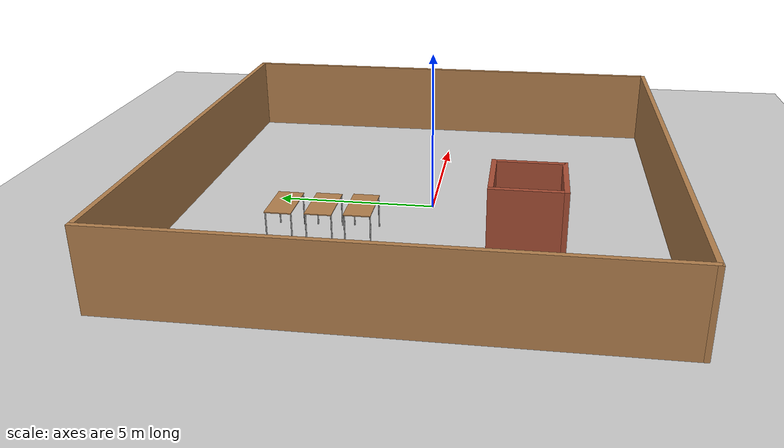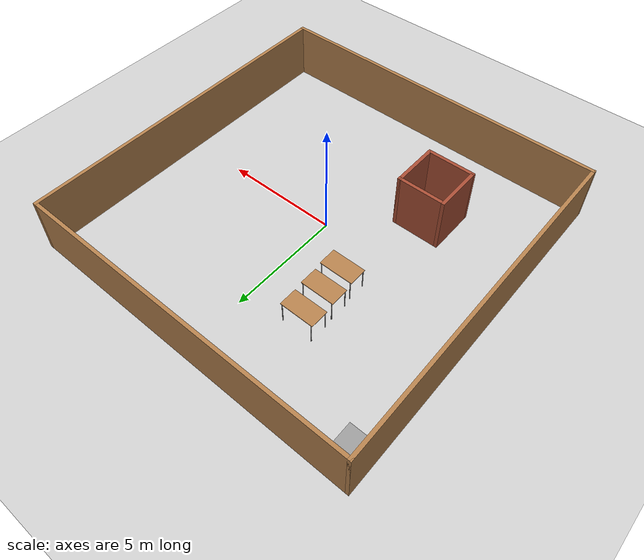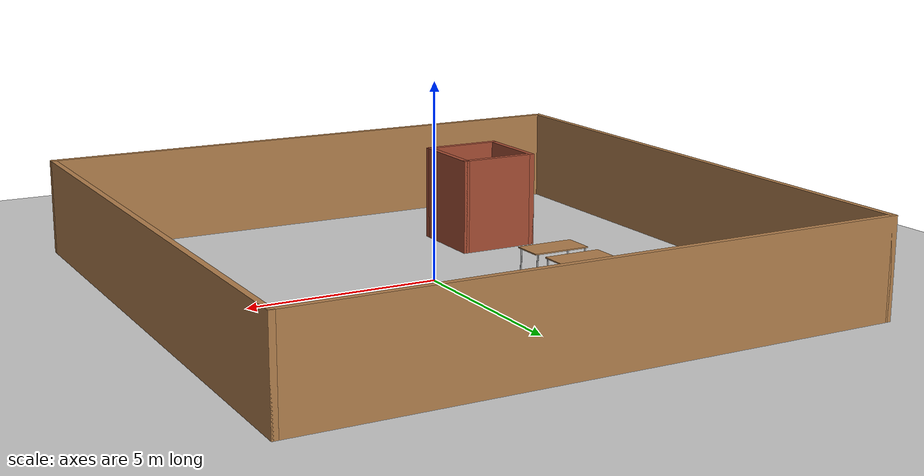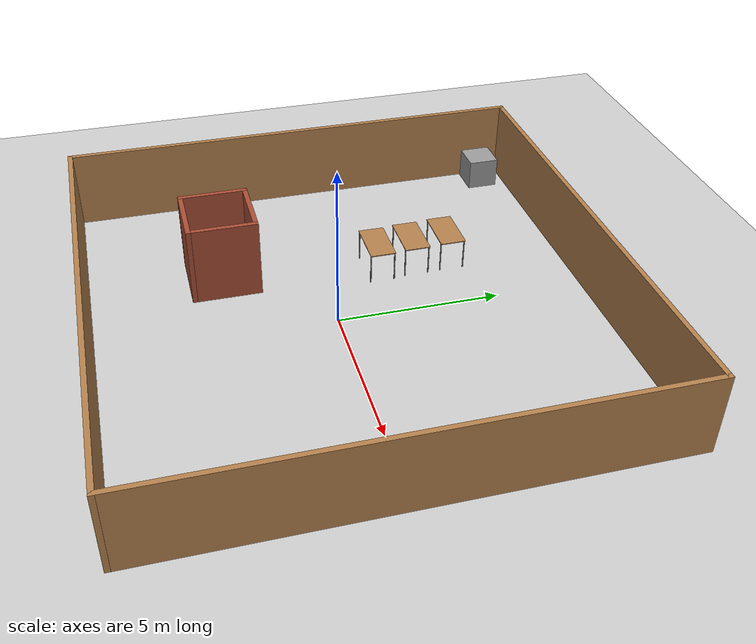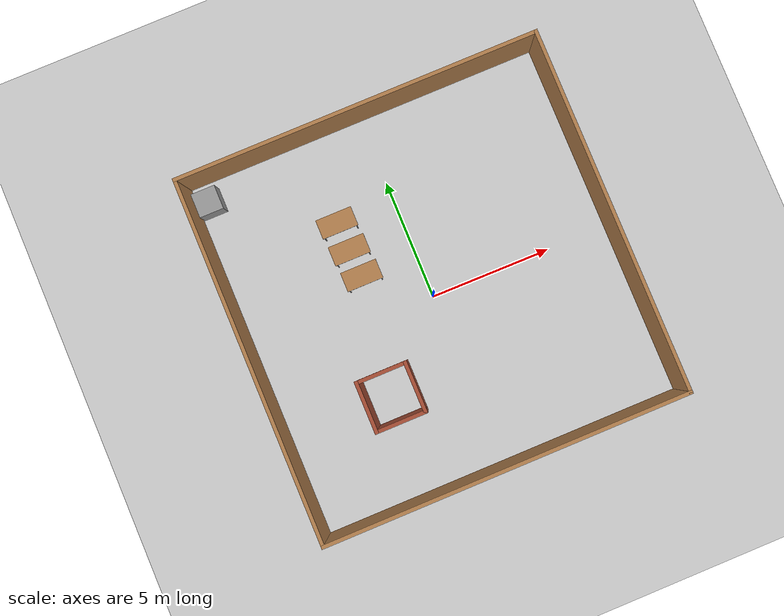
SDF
<sdf version="1.7">
 <world name="default">
  <light name="sun" type="directional">
   <pose>0 0 10 0 -0 0</pose>
   <diffuse>0.8 0.8 0.8 1</diffuse>
   <specular>0.2 0.2 0.2 1</specular>
   <attenuation>
    <range>1000</range>
    <constant>0.9</constant>
    <linear>0.01</linear>
    <quadratic>0.001</quadratic>
   </attenuation>
   <direction>-0.5 0.1 -0.9</direction>
   <spot><inner_angle>0</inner_angle><outer_angle>0</outer_angle><falloff>0</falloff></spot>
  </light>
  <model name="ground_plane">
   <static>1</static>
   <link name="link">
    <collision name="collision">
     <geometry><plane><normal>0 0 1</normal><size>100 100</size></plane></geometry>
     <surface>
      <contact><collide_bitmask>65535</collide_bitmask></contact>
      <friction><ode><mu>100</mu><mu2>50</mu2></ode></friction>
     </surface>
    </collision>
    <visual name="visual">
     <cast_shadows>0</cast_shadows>
     <geometry><plane><normal>0 0 1</normal><size>100 100</size></plane></geometry>
     <material>
      <script><uri>file://media/materials/scripts/gazebo.material</uri><name>Gazebo/Grey</name></script>
     </material>
    </visual>
   </link>
  </model>
  <gravity>0 0 -9.8</gravity>
  <magnetic_field>6e-06 2.3e-05 -4.2e-05</magnetic_field>
  <atmosphere type="adiabatic"/>
  <physics type="ode">
   <max_step_size>0.001</max_step_size>
   <real_time_factor>1</real_time_factor>
   <real_time_update_rate>1000</real_time_update_rate>
  </physics>
  <scene><ambient>0.4 0.4 0.4 1</ambient><background>0.7 0.7 0.7 1</background><shadows>1</shadows></scene>
  <spherical_coordinates>
   <surface_model>EARTH_WGS84</surface_model>
   <latitude_deg>0</latitude_deg>
   <longitude_deg>0</longitude_deg>
   <elevation>0</elevation>
   <heading_deg>0</heading_deg>
  </spherical_coordinates>
  <model name="unit_box">
   <pose>-6.84966 6.89839 0.499995 0 1e-05 0</pose>
   <link name="link">
    <inertial>
     <mass>1</mass>
     <inertia>
      <ixx>0.166667</ixx>
      <ixy>0</ixy>
      <ixz>0</ixz>
      <iyy>0.166667</iyy>
      <iyz>0</iyz>
      <izz>0.166667</izz>
     </inertia>
    </inertial>
    <collision name="collision"><geometry><box><size>1 1 1</size></box></geometry></collision>
    <visual name="visual">
     <geometry><box><size>1 1 1</size></box></geometry>
     <material>
      <script><name>Gazebo/Grey</name><uri>file://media/materials/scripts/gazebo.material</uri></script>
     </material>
    </visual>
   </link>
  </model>
  <model name="15*15">
   <pose>0.028974 0.322206 0 0 -0 0</pose>
   <link name="Wall_2">
    <collision name="Wall_2_Collision">
     <geometry><box><size>15.15 0.15 2.5</size></box></geometry>
     <pose>0 0 1.25 0 -0 0</pose>
    </collision>
    <visual name="Wall_2_Visual">
     <pose>0 0 1.25 0 -0 0</pose>
     <geometry><box><size>15.15 0.15 2.5</size></box></geometry>
     <material>
      <script><uri>file://media/materials/scripts/gazebo.material</uri><name>Gazebo/Wood</name></script>
      <ambient>1 1 1 1</ambient>
     </material>
     <meta><layer>0</layer></meta>
    </visual>
    <pose>7.5 0 0 0 -0 -1.5708</pose>
   </link>
   <link name="Wall_3">
    <collision name="Wall_3_Collision">
     <geometry><box><size>15.15 0.15 2.5</size></box></geometry>
     <pose>0 0 1.25 0 -0 0</pose>
    </collision>
    <visual name="Wall_3_Visual">
     <pose>0 0 1.25 0 -0 0</pose>
     <geometry><box><size>15.15 0.15 2.5</size></box></geometry>
     <material>
      <script><uri>file://media/materials/scripts/gazebo.material</uri><name>Gazebo/Wood</name></script>
      <ambient>1 1 1 1</ambient>
     </material>
     <meta><layer>0</layer></meta>
    </visual>
    <pose>0 -7.5 0 0 -0 3.14159</pose>
   </link>
   <link name="Wall_4">
    <collision name="Wall_4_Collision">
     <geometry><box><size>15.15 0.15 2.5</size></box></geometry>
     <pose>0 0 1.25 0 -0 0</pose>
    </collision>
    <visual name="Wall_4_Visual">
     <pose>0 0 1.25 0 -0 0</pose>
     <geometry><box><size>15.15 0.15 2.5</size></box></geometry>
     <material>
      <script><uri>file://media/materials/scripts/gazebo.material</uri><name>Gazebo/Wood</name></script>
      <ambient>1 1 1 1</ambient>
     </material>
     <meta><layer>0</layer></meta>
    </visual>
    <pose>-7.5 0 0 0 -0 1.5708</pose>
   </link>
   <link name="Wall_5">
    <collision name="Wall_5_Collision">
     <geometry><box><size>15.15 0.15 2.5</size></box></geometry>
     <pose>0 0 1.25 0 -0 0</pose>
    </collision>
    <visual name="Wall_5_Visual">
     <pose>0 0 1.25 0 -0 0</pose>
     <geometry><box><size>15.15 0.15 2.5</size></box></geometry>
     <material>
      <script><uri>file://media/materials/scripts/gazebo.material</uri><name>Gazebo/Wood</name></script>
      <ambient>1 1 1 1</ambient>
     </material>
     <meta><layer>0</layer></meta>
    </visual>
    <pose>0 7.5 0 0 -0 0</pose>
   </link>
   <static>1</static>
  </model>
  <model name="2*2">
   <pose>-3 -3 0 0 -0 0</pose>
   <link name="Wall_5">
    <collision name="Wall_5_Collision">
     <geometry><box><size>2.15 0.15 2.5</size></box></geometry>
     <pose>0 0 1.25 0 -0 0</pose>
    </collision>
    <visual name="Wall_5_Visual">
     <pose>0 0 1.25 0 -0 0</pose>
     <geometry><box><size>2.15 0.15 2.5</size></box></geometry>
     <material>
      <script><uri>file://media/materials/scripts/gazebo.material</uri><name>Gazebo/Bricks</name></script>
      <ambient>1 1 1 1</ambient>
     </material>
     <meta><layer>0</layer></meta>
    </visual>
    <pose>1 0 0 0 -0 -1.5708</pose>
   </link>
   <link name="Wall_6">
    <collision name="Wall_6_Collision">
     <geometry><box><size>2.15 0.15 2.5</size></box></geometry>
     <pose>0 0 1.25 0 -0 0</pose>
    </collision>
    <visual name="Wall_6_Visual">
     <pose>0 0 1.25 0 -0 0</pose>
     <geometry><box><size>2.15 0.15 2.5</size></box></geometry>
     <material>
      <script><uri>file://media/materials/scripts/gazebo.material</uri><name>Gazebo/Bricks</name></script>
      <ambient>1 1 1 1</ambient>
     </material>
     <meta><layer>0</layer></meta>
    </visual>
    <pose>0 -1 0 0 -0 3.14159</pose>
   </link>
   <link name="Wall_7">
    <collision name="Wall_7_Collision">
     <geometry><box><size>2.15 0.15 2.5</size></box></geometry>
     <pose>0 0 1.25 0 -0 0</pose>
    </collision>
    <visual name="Wall_7_Visual">
     <pose>0 0 1.25 0 -0 0</pose>
     <geometry><box><size>2.15 0.15 2.5</size></box></geometry>
     <material>
      <script><uri>file://media/materials/scripts/gazebo.material</uri><name>Gazebo/Bricks</name></script>
      <ambient>1 1 1 1</ambient>
     </material>
     <meta><layer>0</layer></meta>
    </visual>
    <pose>-1 0 0 0 -0 1.5708</pose>
   </link>
   <link name="Wall_8">
    <collision name="Wall_8_Collision">
     <geometry><box><size>2.15 0.15 2.5</size></box></geometry>
     <pose>0 0 1.25 0 -0 0</pose>
    </collision>
    <visual name="Wall_8_Visual">
     <pose>0 0 1.25 0 -0 0</pose>
     <geometry><box><size>2.15 0.15 2.5</size></box></geometry>
     <material>
      <script><uri>file://media/materials/scripts/gazebo.material</uri><name>Gazebo/Bricks</name></script>
      <ambient>1 1 1 1</ambient>
     </material>
     <meta><layer>0</layer></meta>
    </visual>
    <pose>0 1 0 0 -0 0</pose>
   </link>
   <static>1</static>
  </model>
  <model name="table">
   <static>1</static>
   <link name="link">
    <collision name="surface">
     <pose>0 0 1 0 -0 0</pose>
     <geometry><box><size>1.5 0.8 0.03</size></box></geometry>
     <surface><friction><ode><mu>0.6</mu><mu2>0.6</mu2></ode></friction></surface>
    </collision>
    <visual name="visual1">
     <pose>0 0 1 0 -0 0</pose>
     <geometry><box><size>1.5 0.8 0.03</size></box></geometry>
     <material>
      <script><uri>file://media/materials/scripts/gazebo.material</uri><name>Gazebo/Wood</name></script>
     </material>
    </visual>
    <collision name="front_left_leg">
     <pose>0.68 0.38 0.5 0 -0 0</pose>
     <geometry><cylinder><radius>0.02</radius><length>1</length></cylinder></geometry>
    </collision>
    <visual name="front_left_leg">
     <pose>0.68 0.38 0.5 0 -0 0</pose>
     <geometry><cylinder><radius>0.02</radius><length>1</length></cylinder></geometry>
     <material>
      <script><uri>file://media/materials/scripts/gazebo.material</uri><name>Gazebo/Grey</name></script>
     </material>
    </visual>
    <collision name="front_right_leg">
     <pose>0.68 -0.38 0.5 0 -0 0</pose>
     <geometry><cylinder><radius>0.02</radius><length>1</length></cylinder></geometry>
    </collision>
    <visual name="front_right_leg">
     <pose>0.68 -0.38 0.5 0 -0 0</pose>
     <geometry><cylinder><radius>0.02</radius><length>1</length></cylinder></geometry>
     <material>
      <script><uri>file://media/materials/scripts/gazebo.material</uri><name>Gazebo/Grey</name></script>
     </material>
    </visual>
    <collision name="back_right_leg">
     <pose>-0.68 -0.38 0.5 0 -0 0</pose>
     <geometry><cylinder><radius>0.02</radius><length>1</length></cylinder></geometry>
    </collision>
    <visual name="back_right_leg">
     <pose>-0.68 -0.38 0.5 0 -0 0</pose>
     <geometry><cylinder><radius>0.02</radius><length>1</length></cylinder></geometry>
     <material>
      <script><uri>file://media/materials/scripts/gazebo.material</uri><name>Gazebo/Grey</name></script>
     </material>
    </visual>
    <collision name="back_left_leg">
     <pose>-0.68 0.38 0.5 0 -0 0</pose>
     <geometry><cylinder><radius>0.02</radius><length>1</length></cylinder></geometry>
    </collision>
    <visual name="back_left_leg">
     <pose>-0.68 0.38 0.5 0 -0 0</pose>
     <geometry><cylinder><radius>0.02</radius><length>1</length></cylinder></geometry>
     <material>
      <script><uri>file://media/materials/scripts/gazebo.material</uri><name>Gazebo/Grey</name></script>
     </material>
    </visual>
   </link>
   <pose>-2.42489 4.12836 0 0 -0 0</pose>
  </model>
  <model name="table_0">
   <static>1</static>
   <link name="link">
    <collision name="surface">
     <pose>0 0 1 0 -0 0</pose>
     <geometry><box><size>1.5 0.8 0.03</size></box></geometry>
     <surface><friction><ode><mu>0.6</mu><mu2>0.6</mu2></ode></friction></surface>
    </collision>
    <visual name="visual1">
     <pose>0 0 1 0 -0 0</pose>
     <geometry><box><size>1.5 0.8 0.03</size></box></geometry>
     <material>
      <script><uri>file://media/materials/scripts/gazebo.material</uri><name>Gazebo/Wood</name></script>
     </material>
    </visual>
    <collision name="front_left_leg">
     <pose>0.68 0.38 0.5 0 -0 0</pose>
     <geometry><cylinder><radius>0.02</radius><length>1</length></cylinder></geometry>
    </collision>
    <visual name="front_left_leg">
     <pose>0.68 0.38 0.5 0 -0 0</pose>
     <geometry><cylinder><radius>0.02</radius><length>1</length></cylinder></geometry>
     <material>
      <script><uri>file://media/materials/scripts/gazebo.material</uri><name>Gazebo/Grey</name></script>
     </material>
    </visual>
    <collision name="front_right_leg">
     <pose>0.68 -0.38 0.5 0 -0 0</pose>
     <geometry><cylinder><radius>0.02</radius><length>1</length></cylinder></geometry>
    </collision>
    <visual name="front_right_leg">
     <pose>0.68 -0.38 0.5 0 -0 0</pose>
     <geometry><cylinder><radius>0.02</radius><length>1</length></cylinder></geometry>
     <material>
      <script><uri>file://media/materials/scripts/gazebo.material</uri><name>Gazebo/Grey</name></script>
     </material>
    </visual>
    <collision name="back_right_leg">
     <pose>-0.68 -0.38 0.5 0 -0 0</pose>
     <geometry><cylinder><radius>0.02</radius><length>1</length></cylinder></geometry>
    </collision>
    <visual name="back_right_leg">
     <pose>-0.68 -0.38 0.5 0 -0 0</pose>
     <geometry><cylinder><radius>0.02</radius><length>1</length></cylinder></geometry>
     <material>
      <script><uri>file://media/materials/scripts/gazebo.material</uri><name>Gazebo/Grey</name></script>
     </material>
    </visual>
    <collision name="back_left_leg">
     <pose>-0.68 0.38 0.5 0 -0 0</pose>
     <geometry><cylinder><radius>0.02</radius><length>1</length></cylinder></geometry>
    </collision>
    <visual name="back_left_leg">
     <pose>-0.68 0.38 0.5 0 -0 0</pose>
     <geometry><cylinder><radius>0.02</radius><length>1</length></cylinder></geometry>
     <material>
      <script><uri>file://media/materials/scripts/gazebo.material</uri><name>Gazebo/Grey</name></script>
     </material>
    </visual>
   </link>
   <pose>-2.37318 2.95294 0 0 -0 0</pose>
  </model>
  <model name="table_1">
   <static>1</static>
   <link name="link">
    <collision name="surface">
     <pose>0 0 1 0 -0 0</pose>
     <geometry><box><size>1.5 0.8 0.03</size></box></geometry>
     <surface><friction><ode><mu>0.6</mu><mu2>0.6</mu2></ode></friction></surface>
    </collision>
    <visual name="visual1">
     <pose>0 0 1 0 -0 0</pose>
     <geometry><box><size>1.5 0.8 0.03</size></box></geometry>
     <material>
      <script><uri>file://media/materials/scripts/gazebo.material</uri><name>Gazebo/Wood</name></script>
     </material>
    </visual>
    <collision name="front_left_leg">
     <pose>0.68 0.38 0.5 0 -0 0</pose>
     <geometry><cylinder><radius>0.02</radius><length>1</length></cylinder></geometry>
    </collision>
    <visual name="front_left_leg">
     <pose>0.68 0.38 0.5 0 -0 0</pose>
     <geometry><cylinder><radius>0.02</radius><length>1</length></cylinder></geometry>
     <material>
      <script><uri>file://media/materials/scripts/gazebo.material</uri><name>Gazebo/Grey</name></script>
     </material>
    </visual>
    <collision name="front_right_leg">
     <pose>0.68 -0.38 0.5 0 -0 0</pose>
     <geometry><cylinder><radius>0.02</radius><length>1</length></cylinder></geometry>
    </collision>
    <visual name="front_right_leg">
     <pose>0.68 -0.38 0.5 0 -0 0</pose>
     <geometry><cylinder><radius>0.02</radius><length>1</length></cylinder></geometry>
     <material>
      <script><uri>file://media/materials/scripts/gazebo.material</uri><name>Gazebo/Grey</name></script>
     </material>
    </visual>
    <collision name="back_right_leg">
     <pose>-0.68 -0.38 0.5 0 -0 0</pose>
     <geometry><cylinder><radius>0.02</radius><length>1</length></cylinder></geometry>
    </collision>
    <visual name="back_right_leg">
     <pose>-0.68 -0.38 0.5 0 -0 0</pose>
     <geometry><cylinder><radius>0.02</radius><length>1</length></cylinder></geometry>
     <material>
      <script><uri>file://media/materials/scripts/gazebo.material</uri><name>Gazebo/Grey</name></script>
     </material>
    </visual>
    <collision name="back_left_leg">
     <pose>-0.68 0.38 0.5 0 -0 0</pose>
     <geometry><cylinder><radius>0.02</radius><length>1</length></cylinder></geometry>
    </collision>
    <visual name="back_left_leg">
     <pose>-0.68 0.38 0.5 0 -0 0</pose>
     <geometry><cylinder><radius>0.02</radius><length>1</length></cylinder></geometry>
     <material>
      <script><uri>file://media/materials/scripts/gazebo.material</uri><name>Gazebo/Grey</name></script>
     </material>
    </visual>
   </link>
   <pose>-2.31031 1.82404 0 0 -0 0</pose>
  </model>
 </world>
</sdf>
